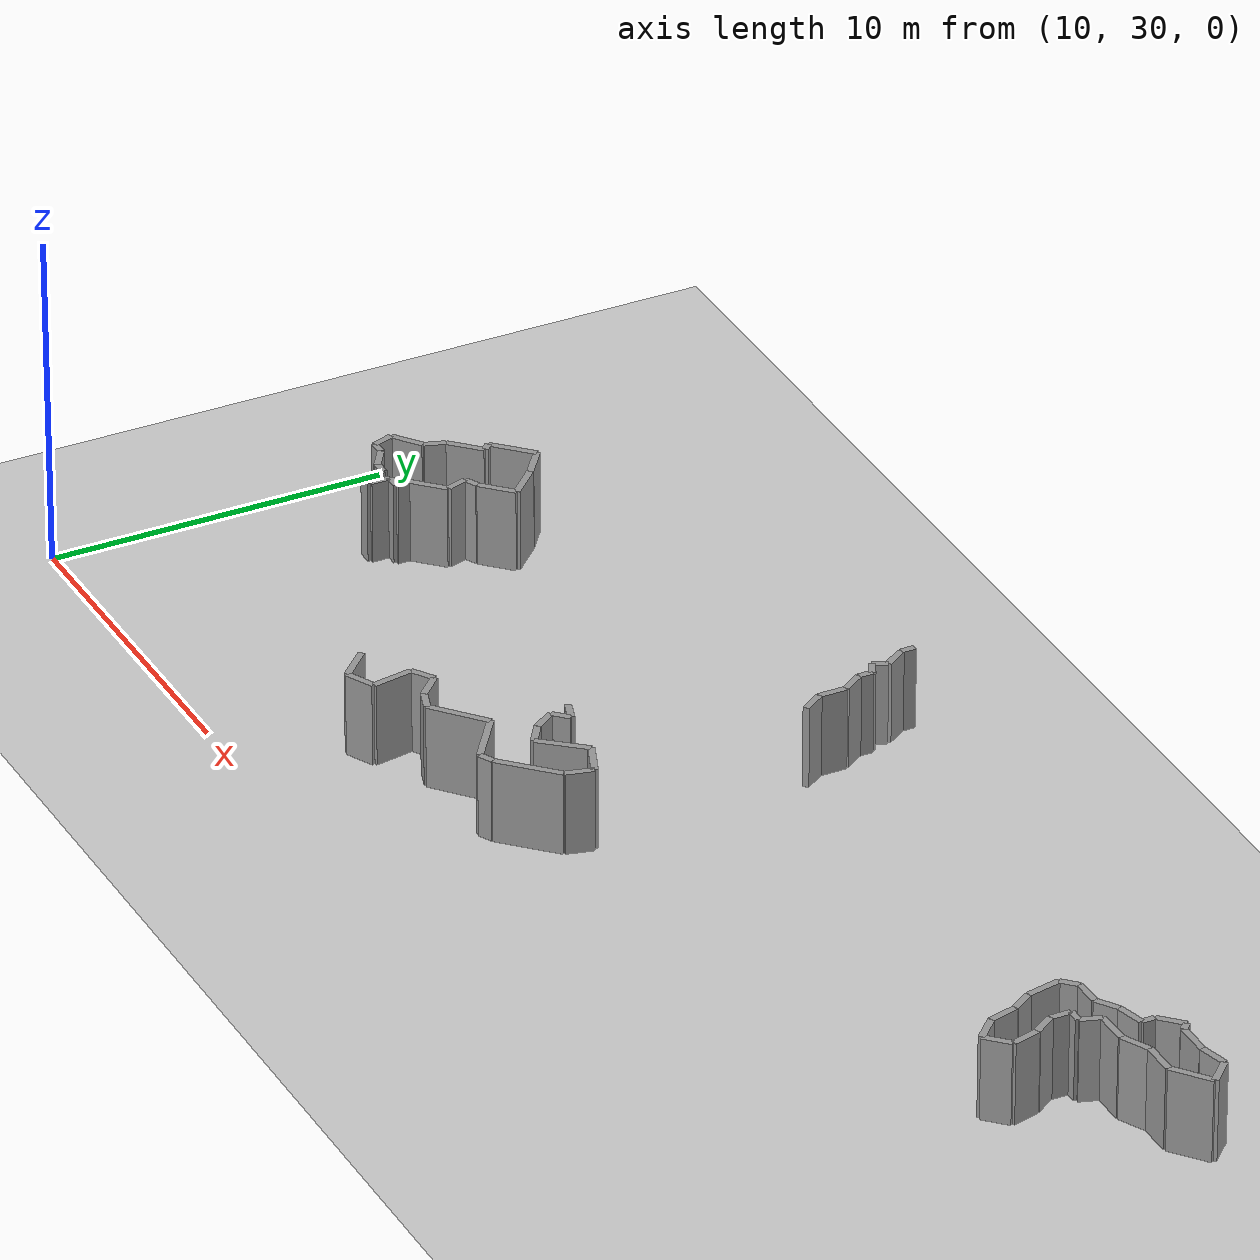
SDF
<sdf version="1.4">
 <world name="1_wall">
  <model name="ground_plane">
   <static>1</static>
   <link name="link">
    <collision name="collision">
     <geometry><plane><normal>0 0 1</normal><size>1000 1000</size></plane></geometry>
     <surface><friction><ode><mu>100</mu><mu2>50</mu2></ode></friction></surface>
    </collision>
    <visual name="visual">
     <cast_shadows>0</cast_shadows>
     <geometry><plane><normal>0 0 1</normal><size>10000 10000</size></plane></geometry>
     <material>
      <script><uri>file://media/materials/scripts/gazebo.material</uri><name>Gazebo/Grey</name></script>
     </material>
    </visual>
    <velocity_decay><linear>0</linear><angular>0</angular></velocity_decay>
   </link>
  </model>
  <model name="Wall_620">
   <static>1</static>
   <link name="Wall_620">
    <collision name="Wall_Collision_620">
     <geometry><box><size>0.4 0.2 2.5</size></box></geometry>
     <pose>0 0 1.25 0 -0 0</pose>
    </collision>
    <visual name="Wall_Visual_620">
     <pose>0 0 1.25 0 -0 0</pose>
     <geometry><box><size>0.4 0.2 2.5</size></box></geometry>
     <material>
      <script><uri>file://media/materials/scripts/gazebo.material</uri><name>Gazebo/Grey</name></script>
     </material>
    </visual>
    <velocity_decay><linear>0</linear><angular>0</angular></velocity_decay>
    <pose>28.2 47.0 0 0 0 -1.57079632679</pose>
   </link>
  </model>
  <model name="Wall_621">
   <static>1</static>
   <link name="Wall_621">
    <collision name="Wall_Collision_621">
     <geometry><box><size>0.721110255093 0.2 2.5</size></box></geometry>
     <pose>0 0 1.25 0 -0 0</pose>
    </collision>
    <visual name="Wall_Visual_621">
     <pose>0 0 1.25 0 -0 0</pose>
     <geometry><box><size>0.721110255093 0.2 2.5</size></box></geometry>
     <material>
      <script><uri>file://media/materials/scripts/gazebo.material</uri><name>Gazebo/Grey</name></script>
     </material>
    </visual>
    <velocity_decay><linear>0</linear><angular>0</angular></velocity_decay>
    <pose>28.4 46.5 0 0 0 -0.982793723247</pose>
   </link>
  </model>
  <model name="Wall_622">
   <static>1</static>
   <link name="Wall_622">
    <collision name="Wall_Collision_622">
     <geometry><box><size>0.4472135955 0.2 2.5</size></box></geometry>
     <pose>0 0 1.25 0 -0 0</pose>
    </collision>
    <visual name="Wall_Visual_622">
     <pose>0 0 1.25 0 -0 0</pose>
     <geometry><box><size>0.4472135955 0.2 2.5</size></box></geometry>
     <material>
      <script><uri>file://media/materials/scripts/gazebo.material</uri><name>Gazebo/Grey</name></script>
     </material>
    </visual>
    <velocity_decay><linear>0</linear><angular>0</angular></velocity_decay>
    <pose>28.5 46.0 0 0 0 -2.0344439358</pose>
   </link>
  </model>
  <model name="Wall_623">
   <static>1</static>
   <link name="Wall_623">
    <collision name="Wall_Collision_623">
     <geometry><box><size>0.4472135955 0.2 2.5</size></box></geometry>
     <pose>0 0 1.25 0 -0 0</pose>
    </collision>
    <visual name="Wall_Visual_623">
     <pose>0 0 1.25 0 -0 0</pose>
     <geometry><box><size>0.4472135955 0.2 2.5</size></box></geometry>
     <material>
      <script><uri>file://media/materials/scripts/gazebo.material</uri><name>Gazebo/Grey</name></script>
     </material>
    </visual>
    <velocity_decay><linear>0</linear><angular>0</angular></velocity_decay>
    <pose>28.6 45.7 0 0 0 -0.463647609001</pose>
   </link>
  </model>
  <model name="Wall_624">
   <static>1</static>
   <link name="Wall_624">
    <collision name="Wall_Collision_624">
     <geometry><box><size>0.4 0.2 2.5</size></box></geometry>
     <pose>0 0 1.25 0 -0 0</pose>
    </collision>
    <visual name="Wall_Visual_624">
     <pose>0 0 1.25 0 -0 0</pose>
     <geometry><box><size>0.4 0.2 2.5</size></box></geometry>
     <material>
      <script><uri>file://media/materials/scripts/gazebo.material</uri><name>Gazebo/Grey</name></script>
     </material>
    </visual>
    <velocity_decay><linear>0</linear><angular>0</angular></velocity_decay>
    <pose>28.8 45.4 0 0 0 -1.57079632679</pose>
   </link>
  </model>
  <model name="Wall_625">
   <static>1</static>
   <link name="Wall_625">
    <collision name="Wall_Collision_625">
     <geometry><box><size>0.721110255093 0.2 2.5</size></box></geometry>
     <pose>0 0 1.25 0 -0 0</pose>
    </collision>
    <visual name="Wall_Visual_625">
     <pose>0 0 1.25 0 -0 0</pose>
     <geometry><box><size>0.721110255093 0.2 2.5</size></box></geometry>
     <material>
      <script><uri>file://media/materials/scripts/gazebo.material</uri><name>Gazebo/Grey</name></script>
     </material>
    </visual>
    <velocity_decay><linear>0</linear><angular>0</angular></velocity_decay>
    <pose>29.0 44.9 0 0 0 -0.982793723247</pose>
   </link>
  </model>
  <model name="Wall_626">
   <static>1</static>
   <link name="Wall_626">
    <collision name="Wall_Collision_626">
     <geometry><box><size>0.8 0.2 2.5</size></box></geometry>
     <pose>0 0 1.25 0 -0 0</pose>
    </collision>
    <visual name="Wall_Visual_626">
     <pose>0 0 1.25 0 -0 0</pose>
     <geometry><box><size>0.8 0.2 2.5</size></box></geometry>
     <material>
      <script><uri>file://media/materials/scripts/gazebo.material</uri><name>Gazebo/Grey</name></script>
     </material>
    </visual>
    <velocity_decay><linear>0</linear><angular>0</angular></velocity_decay>
    <pose>29.2 44.2 0 0 0 -1.57079632679</pose>
   </link>
  </model>
  <model name="Wall_627">
   <static>1</static>
   <link name="Wall_627">
    <collision name="Wall_Collision_627">
     <geometry><box><size>0.721110255093 0.2 2.5</size></box></geometry>
     <pose>0 0 1.25 0 -0 0</pose>
    </collision>
    <visual name="Wall_Visual_627">
     <pose>0 0 1.25 0 -0 0</pose>
     <geometry><box><size>0.721110255093 0.2 2.5</size></box></geometry>
     <material>
      <script><uri>file://media/materials/scripts/gazebo.material</uri><name>Gazebo/Grey</name></script>
     </material>
    </visual>
    <velocity_decay><linear>0</linear><angular>0</angular></velocity_decay>
    <pose>29.4 43.5 0 0 0 -0.982793723247</pose>
   </link>
  </model>
  <model name="Wall_628">
   <static>1</static>
   <link name="Wall_628">
    <collision name="Wall_Collision_628">
     <geometry><box><size>0.848528137424 0.2 2.5</size></box></geometry>
     <pose>0 0 1.25 0 -0 0</pose>
    </collision>
    <visual name="Wall_Visual_628">
     <pose>0 0 1.25 0 -0 0</pose>
     <geometry><box><size>0.848528137424 0.2 2.5</size></box></geometry>
     <material>
      <script><uri>file://media/materials/scripts/gazebo.material</uri><name>Gazebo/Grey</name></script>
     </material>
    </visual>
    <velocity_decay><linear>0</linear><angular>0</angular></velocity_decay>
    <pose>45.3 40.3 0 0 0 -0.785398163397</pose>
   </link>
  </model>
  <model name="Wall_629">
   <static>1</static>
   <link name="Wall_629">
    <collision name="Wall_Collision_629">
     <geometry><box><size>0.848528137424 0.2 2.5</size></box></geometry>
     <pose>0 0 1.25 0 -0 0</pose>
    </collision>
    <visual name="Wall_Visual_629">
     <pose>0 0 1.25 0 -0 0</pose>
     <geometry><box><size>0.848528137424 0.2 2.5</size></box></geometry>
     <material>
      <script><uri>file://media/materials/scripts/gazebo.material</uri><name>Gazebo/Grey</name></script>
     </material>
    </visual>
    <velocity_decay><linear>0</linear><angular>0</angular></velocity_decay>
    <pose>45.9 40.3 0 0 0 0.785398163397</pose>
   </link>
  </model>
  <model name="Wall_630">
   <static>1</static>
   <link name="Wall_630">
    <collision name="Wall_Collision_630">
     <geometry><box><size>0.824621125124 0.2 2.5</size></box></geometry>
     <pose>0 0 1.25 0 -0 0</pose>
    </collision>
    <visual name="Wall_Visual_630">
     <pose>0 0 1.25 0 -0 0</pose>
     <geometry><box><size>0.824621125124 0.2 2.5</size></box></geometry>
     <material>
      <script><uri>file://media/materials/scripts/gazebo.material</uri><name>Gazebo/Grey</name></script>
     </material>
    </visual>
    <velocity_decay><linear>0</linear><angular>0</angular></velocity_decay>
    <pose>46.1 41.0 0 0 0 1.81577498992</pose>
   </link>
  </model>
  <model name="Wall_631">
   <static>1</static>
   <link name="Wall_631">
    <collision name="Wall_Collision_631">
     <geometry><box><size>0.721110255093 0.2 2.5</size></box></geometry>
     <pose>0 0 1.25 0 -0 0</pose>
    </collision>
    <visual name="Wall_Visual_631">
     <pose>0 0 1.25 0 -0 0</pose>
     <geometry><box><size>0.721110255093 0.2 2.5</size></box></geometry>
     <material>
      <script><uri>file://media/materials/scripts/gazebo.material</uri><name>Gazebo/Grey</name></script>
     </material>
    </visual>
    <velocity_decay><linear>0</linear><angular>0</angular></velocity_decay>
    <pose>45.8 41.7 0 0 0 2.15879893034</pose>
   </link>
  </model>
  <model name="Wall_632">
   <static>1</static>
   <link name="Wall_632">
    <collision name="Wall_Collision_632">
     <geometry><box><size>0.6 0.2 2.5</size></box></geometry>
     <pose>0 0 1.25 0 -0 0</pose>
    </collision>
    <visual name="Wall_Visual_632">
     <pose>0 0 1.25 0 -0 0</pose>
     <geometry><box><size>0.6 0.2 2.5</size></box></geometry>
     <material>
      <script><uri>file://media/materials/scripts/gazebo.material</uri><name>Gazebo/Grey</name></script>
     </material>
    </visual>
    <velocity_decay><linear>0</linear><angular>0</angular></velocity_decay>
    <pose>45.6 42.3 0 0 0 1.57079632679</pose>
   </link>
  </model>
  <model name="Wall_633">
   <static>1</static>
   <link name="Wall_633">
    <collision name="Wall_Collision_633">
     <geometry><box><size>0.4 0.2 2.5</size></box></geometry>
     <pose>0 0 1.25 0 -0 0</pose>
    </collision>
    <visual name="Wall_Visual_633">
     <pose>0 0 1.25 0 -0 0</pose>
     <geometry><box><size>0.4 0.2 2.5</size></box></geometry>
     <material>
      <script><uri>file://media/materials/scripts/gazebo.material</uri><name>Gazebo/Grey</name></script>
     </material>
    </visual>
    <velocity_decay><linear>0</linear><angular>0</angular></velocity_decay>
    <pose>45.8 42.6 0 0 0 0.0</pose>
   </link>
  </model>
  <model name="Wall_634">
   <static>1</static>
   <link name="Wall_634">
    <collision name="Wall_Collision_634">
     <geometry><box><size>0.632455532034 0.2 2.5</size></box></geometry>
     <pose>0 0 1.25 0 -0 0</pose>
    </collision>
    <visual name="Wall_Visual_634">
     <pose>0 0 1.25 0 -0 0</pose>
     <geometry><box><size>0.632455532034 0.2 2.5</size></box></geometry>
     <material>
      <script><uri>file://media/materials/scripts/gazebo.material</uri><name>Gazebo/Grey</name></script>
     </material>
    </visual>
    <velocity_decay><linear>0</linear><angular>0</angular></velocity_decay>
    <pose>46.1 42.9 0 0 0 1.2490457724</pose>
   </link>
  </model>
  <model name="Wall_635">
   <static>1</static>
   <link name="Wall_635">
    <collision name="Wall_Collision_635">
     <geometry><box><size>1.0 0.2 2.5</size></box></geometry>
     <pose>0 0 1.25 0 -0 0</pose>
    </collision>
    <visual name="Wall_Visual_635">
     <pose>0 0 1.25 0 -0 0</pose>
     <geometry><box><size>1.0 0.2 2.5</size></box></geometry>
     <material>
      <script><uri>file://media/materials/scripts/gazebo.material</uri><name>Gazebo/Grey</name></script>
     </material>
    </visual>
    <velocity_decay><linear>0</linear><angular>0</angular></velocity_decay>
    <pose>46.7 43.2 0 0 0 0.0</pose>
   </link>
  </model>
  <model name="Wall_636">
   <static>1</static>
   <link name="Wall_636">
    <collision name="Wall_Collision_636">
     <geometry><box><size>0.894427191 0.2 2.5</size></box></geometry>
     <pose>0 0 1.25 0 -0 0</pose>
    </collision>
    <visual name="Wall_Visual_636">
     <pose>0 0 1.25 0 -0 0</pose>
     <geometry><box><size>0.894427191 0.2 2.5</size></box></geometry>
     <material>
      <script><uri>file://media/materials/scripts/gazebo.material</uri><name>Gazebo/Grey</name></script>
     </material>
    </visual>
    <velocity_decay><linear>0</linear><angular>0</angular></velocity_decay>
    <pose>47.6 43.4 0 0 0 0.463647609001</pose>
   </link>
  </model>
  <model name="Wall_637">
   <static>1</static>
   <link name="Wall_637">
    <collision name="Wall_Collision_637">
     <geometry><box><size>1.0 0.2 2.5</size></box></geometry>
     <pose>0 0 1.25 0 -0 0</pose>
    </collision>
    <visual name="Wall_Visual_637">
     <pose>0 0 1.25 0 -0 0</pose>
     <geometry><box><size>1.0 0.2 2.5</size></box></geometry>
     <material>
      <script><uri>file://media/materials/scripts/gazebo.material</uri><name>Gazebo/Grey</name></script>
     </material>
    </visual>
    <velocity_decay><linear>0</linear><angular>0</angular></velocity_decay>
    <pose>48.5 43.6 0 0 0 0.0</pose>
   </link>
  </model>
  <model name="Wall_638">
   <static>1</static>
   <link name="Wall_638">
    <collision name="Wall_Collision_638">
     <geometry><box><size>1.28062484749 0.2 2.5</size></box></geometry>
     <pose>0 0 1.25 0 -0 0</pose>
    </collision>
    <visual name="Wall_Visual_638">
     <pose>0 0 1.25 0 -0 0</pose>
     <geometry><box><size>1.28062484749 0.2 2.5</size></box></geometry>
     <material>
      <script><uri>file://media/materials/scripts/gazebo.material</uri><name>Gazebo/Grey</name></script>
     </material>
    </visual>
    <velocity_decay><linear>0</linear><angular>0</angular></velocity_decay>
    <pose>49.5 44.0 0 0 0 0.674740942224</pose>
   </link>
  </model>
  <model name="Wall_639">
   <static>1</static>
   <link name="Wall_639">
    <collision name="Wall_Collision_639">
     <geometry><box><size>0.848528137424 0.2 2.5</size></box></geometry>
     <pose>0 0 1.25 0 -0 0</pose>
    </collision>
    <visual name="Wall_Visual_639">
     <pose>0 0 1.25 0 -0 0</pose>
     <geometry><box><size>0.848528137424 0.2 2.5</size></box></geometry>
     <material>
      <script><uri>file://media/materials/scripts/gazebo.material</uri><name>Gazebo/Grey</name></script>
     </material>
    </visual>
    <velocity_decay><linear>0</linear><angular>0</angular></velocity_decay>
    <pose>49.7 44.7 0 0 0 2.35619449019</pose>
   </link>
  </model>
  <model name="Wall_640">
   <static>1</static>
   <link name="Wall_640">
    <collision name="Wall_Collision_640">
     <geometry><box><size>0.824621125124 0.2 2.5</size></box></geometry>
     <pose>0 0 1.25 0 -0 0</pose>
    </collision>
    <visual name="Wall_Visual_640">
     <pose>0 0 1.25 0 -0 0</pose>
     <geometry><box><size>0.824621125124 0.2 2.5</size></box></geometry>
     <material>
      <script><uri>file://media/materials/scripts/gazebo.material</uri><name>Gazebo/Grey</name></script>
     </material>
    </visual>
    <velocity_decay><linear>0</linear><angular>0</angular></velocity_decay>
    <pose>49.0 44.9 0 0 0 -2.89661399046</pose>
   </link>
  </model>
  <model name="Wall_641">
   <static>1</static>
   <link name="Wall_641">
    <collision name="Wall_Collision_641">
     <geometry><box><size>1.0 0.2 2.5</size></box></geometry>
     <pose>0 0 1.25 0 -0 0</pose>
    </collision>
    <visual name="Wall_Visual_641">
     <pose>0 0 1.25 0 -0 0</pose>
     <geometry><box><size>1.0 0.2 2.5</size></box></geometry>
     <material>
      <script><uri>file://media/materials/scripts/gazebo.material</uri><name>Gazebo/Grey</name></script>
     </material>
    </visual>
    <velocity_decay><linear>0</linear><angular>0</angular></velocity_decay>
    <pose>48.1 44.8 0 0 0 3.14159265359</pose>
   </link>
  </model>
  <model name="Wall_642">
   <static>1</static>
   <link name="Wall_642">
    <collision name="Wall_Collision_642">
     <geometry><box><size>0.282842712475 0.2 2.5</size></box></geometry>
     <pose>0 0 1.25 0 -0 0</pose>
    </collision>
    <visual name="Wall_Visual_642">
     <pose>0 0 1.25 0 -0 0</pose>
     <geometry><box><size>0.282842712475 0.2 2.5</size></box></geometry>
     <material>
      <script><uri>file://media/materials/scripts/gazebo.material</uri><name>Gazebo/Grey</name></script>
     </material>
    </visual>
    <velocity_decay><linear>0</linear><angular>0</angular></velocity_decay>
    <pose>47.5 44.9 0 0 0 2.35619449019</pose>
   </link>
  </model>
  <model name="Wall_643">
   <static>1</static>
   <link name="Wall_643">
    <collision name="Wall_Collision_643">
     <geometry><box><size>0.848528137424 0.2 2.5</size></box></geometry>
     <pose>0 0 1.25 0 -0 0</pose>
    </collision>
    <visual name="Wall_Visual_643">
     <pose>0 0 1.25 0 -0 0</pose>
     <geometry><box><size>0.848528137424 0.2 2.5</size></box></geometry>
     <material>
      <script><uri>file://media/materials/scripts/gazebo.material</uri><name>Gazebo/Grey</name></script>
     </material>
    </visual>
    <velocity_decay><linear>0</linear><angular>0</angular></velocity_decay>
    <pose>47.1 44.7 0 0 0 -2.35619449019</pose>
   </link>
  </model>
  <model name="Wall_644">
   <static>1</static>
   <link name="Wall_644">
    <collision name="Wall_Collision_644">
     <geometry><box><size>0.4 0.2 2.5</size></box></geometry>
     <pose>0 0 1.25 0 -0 0</pose>
    </collision>
    <visual name="Wall_Visual_644">
     <pose>0 0 1.25 0 -0 0</pose>
     <geometry><box><size>0.4 0.2 2.5</size></box></geometry>
     <material>
      <script><uri>file://media/materials/scripts/gazebo.material</uri><name>Gazebo/Grey</name></script>
     </material>
    </visual>
    <velocity_decay><linear>0</linear><angular>0</angular></velocity_decay>
    <pose>46.8 44.2 0 0 0 -1.57079632679</pose>
   </link>
  </model>
  <model name="Wall_645">
   <static>1</static>
   <link name="Wall_645">
    <collision name="Wall_Collision_645">
     <geometry><box><size>0.824621125124 0.2 2.5</size></box></geometry>
     <pose>0 0 1.25 0 -0 0</pose>
    </collision>
    <visual name="Wall_Visual_645">
     <pose>0 0 1.25 0 -0 0</pose>
     <geometry><box><size>0.824621125124 0.2 2.5</size></box></geometry>
     <material>
      <script><uri>file://media/materials/scripts/gazebo.material</uri><name>Gazebo/Grey</name></script>
     </material>
    </visual>
    <velocity_decay><linear>0</linear><angular>0</angular></velocity_decay>
    <pose>46.4 43.9 0 0 0 -2.89661399046</pose>
   </link>
  </model>
  <model name="Wall_646">
   <static>1</static>
   <link name="Wall_646">
    <collision name="Wall_Collision_646">
     <geometry><box><size>0.721110255093 0.2 2.5</size></box></geometry>
     <pose>0 0 1.25 0 -0 0</pose>
    </collision>
    <visual name="Wall_Visual_646">
     <pose>0 0 1.25 0 -0 0</pose>
     <geometry><box><size>0.721110255093 0.2 2.5</size></box></geometry>
     <material>
      <script><uri>file://media/materials/scripts/gazebo.material</uri><name>Gazebo/Grey</name></script>
     </material>
    </visual>
    <velocity_decay><linear>0</linear><angular>0</angular></velocity_decay>
    <pose>45.7 43.6 0 0 0 -2.55359005004</pose>
   </link>
  </model>
  <model name="Wall_647">
   <static>1</static>
   <link name="Wall_647">
    <collision name="Wall_Collision_647">
     <geometry><box><size>0.8 0.2 2.5</size></box></geometry>
     <pose>0 0 1.25 0 -0 0</pose>
    </collision>
    <visual name="Wall_Visual_647">
     <pose>0 0 1.25 0 -0 0</pose>
     <geometry><box><size>0.8 0.2 2.5</size></box></geometry>
     <material>
      <script><uri>file://media/materials/scripts/gazebo.material</uri><name>Gazebo/Grey</name></script>
     </material>
    </visual>
    <velocity_decay><linear>0</linear><angular>0</angular></velocity_decay>
    <pose>45.0 43.4 0 0 0 3.14159265359</pose>
   </link>
  </model>
  <model name="Wall_648">
   <static>1</static>
   <link name="Wall_648">
    <collision name="Wall_Collision_648">
     <geometry><box><size>0.565685424949 0.2 2.5</size></box></geometry>
     <pose>0 0 1.25 0 -0 0</pose>
    </collision>
    <visual name="Wall_Visual_648">
     <pose>0 0 1.25 0 -0 0</pose>
     <geometry><box><size>0.565685424949 0.2 2.5</size></box></geometry>
     <material>
      <script><uri>file://media/materials/scripts/gazebo.material</uri><name>Gazebo/Grey</name></script>
     </material>
    </visual>
    <velocity_decay><linear>0</linear><angular>0</angular></velocity_decay>
    <pose>44.4 43.2 0 0 0 -2.35619449019</pose>
   </link>
  </model>
  <model name="Wall_649">
   <static>1</static>
   <link name="Wall_649">
    <collision name="Wall_Collision_649">
     <geometry><box><size>1.01980390272 0.2 2.5</size></box></geometry>
     <pose>0 0 1.25 0 -0 0</pose>
    </collision>
    <visual name="Wall_Visual_649">
     <pose>0 0 1.25 0 -0 0</pose>
     <geometry><box><size>1.01980390272 0.2 2.5</size></box></geometry>
     <material>
      <script><uri>file://media/materials/scripts/gazebo.material</uri><name>Gazebo/Grey</name></script>
     </material>
    </visual>
    <velocity_decay><linear>0</linear><angular>0</angular></velocity_decay>
    <pose>44.3 42.5 0 0 0 -1.37340076695</pose>
   </link>
  </model>
  <model name="Wall_650">
   <static>1</static>
   <link name="Wall_650">
    <collision name="Wall_Collision_650">
     <geometry><box><size>0.721110255093 0.2 2.5</size></box></geometry>
     <pose>0 0 1.25 0 -0 0</pose>
    </collision>
    <visual name="Wall_Visual_650">
     <pose>0 0 1.25 0 -0 0</pose>
     <geometry><box><size>0.721110255093 0.2 2.5</size></box></geometry>
     <material>
      <script><uri>file://media/materials/scripts/gazebo.material</uri><name>Gazebo/Grey</name></script>
     </material>
    </visual>
    <velocity_decay><linear>0</linear><angular>0</angular></velocity_decay>
    <pose>44.6 41.7 0 0 0 -0.982793723247</pose>
   </link>
  </model>
  <model name="Wall_651">
   <static>1</static>
   <link name="Wall_651">
    <collision name="Wall_Collision_651">
     <geometry><box><size>0.824621125124 0.2 2.5</size></box></geometry>
     <pose>0 0 1.25 0 -0 0</pose>
    </collision>
    <visual name="Wall_Visual_651">
     <pose>0 0 1.25 0 -0 0</pose>
     <geometry><box><size>0.824621125124 0.2 2.5</size></box></geometry>
     <material>
      <script><uri>file://media/materials/scripts/gazebo.material</uri><name>Gazebo/Grey</name></script>
     </material>
    </visual>
    <velocity_decay><linear>0</linear><angular>0</angular></velocity_decay>
    <pose>44.9 41.0 0 0 0 -1.32581766367</pose>
   </link>
  </model>
  <model name="Wall_652">
   <static>1</static>
   <link name="Wall_652">
    <collision name="Wall_Collision_652">
     <geometry><box><size>0.6 0.2 2.5</size></box></geometry>
     <pose>0 0 1.25 0 -0 0</pose>
    </collision>
    <visual name="Wall_Visual_652">
     <pose>0 0 1.25 0 -0 0</pose>
     <geometry><box><size>0.6 0.2 2.5</size></box></geometry>
     <material>
      <script><uri>file://media/materials/scripts/gazebo.material</uri><name>Gazebo/Grey</name></script>
     </material>
    </visual>
    <velocity_decay><linear>0</linear><angular>0</angular></velocity_decay>
    <pose>13.6 38.1 0 0 0 -1.57079632679</pose>
   </link>
  </model>
  <model name="Wall_653">
   <static>1</static>
   <link name="Wall_653">
    <collision name="Wall_Collision_653">
     <geometry><box><size>0.4 0.2 2.5</size></box></geometry>
     <pose>0 0 1.25 0 -0 0</pose>
    </collision>
    <visual name="Wall_Visual_653">
     <pose>0 0 1.25 0 -0 0</pose>
     <geometry><box><size>0.4 0.2 2.5</size></box></geometry>
     <material>
      <script><uri>file://media/materials/scripts/gazebo.material</uri><name>Gazebo/Grey</name></script>
     </material>
    </visual>
    <velocity_decay><linear>0</linear><angular>0</angular></velocity_decay>
    <pose>13.8 37.8 0 0 0 0.0</pose>
   </link>
  </model>
  <model name="Wall_654">
   <static>1</static>
   <link name="Wall_654">
    <collision name="Wall_Collision_654">
     <geometry><box><size>0.6 0.2 2.5</size></box></geometry>
     <pose>0 0 1.25 0 -0 0</pose>
    </collision>
    <visual name="Wall_Visual_654">
     <pose>0 0 1.25 0 -0 0</pose>
     <geometry><box><size>0.6 0.2 2.5</size></box></geometry>
     <material>
      <script><uri>file://media/materials/scripts/gazebo.material</uri><name>Gazebo/Grey</name></script>
     </material>
    </visual>
    <velocity_decay><linear>0</linear><angular>0</angular></velocity_decay>
    <pose>14.0 38.1 0 0 0 1.57079632679</pose>
   </link>
  </model>
  <model name="Wall_655">
   <static>1</static>
   <link name="Wall_655">
    <collision name="Wall_Collision_655">
     <geometry><box><size>0.4 0.2 2.5</size></box></geometry>
     <pose>0 0 1.25 0 -0 0</pose>
    </collision>
    <visual name="Wall_Visual_655">
     <pose>0 0 1.25 0 -0 0</pose>
     <geometry><box><size>0.4 0.2 2.5</size></box></geometry>
     <material>
      <script><uri>file://media/materials/scripts/gazebo.material</uri><name>Gazebo/Grey</name></script>
     </material>
    </visual>
    <velocity_decay><linear>0</linear><angular>0</angular></velocity_decay>
    <pose>14.2 38.4 0 0 0 0.0</pose>
   </link>
  </model>
  <model name="Wall_656">
   <static>1</static>
   <link name="Wall_656">
    <collision name="Wall_Collision_656">
     <geometry><box><size>0.4 0.2 2.5</size></box></geometry>
     <pose>0 0 1.25 0 -0 0</pose>
    </collision>
    <visual name="Wall_Visual_656">
     <pose>0 0 1.25 0 -0 0</pose>
     <geometry><box><size>0.4 0.2 2.5</size></box></geometry>
     <material>
      <script><uri>file://media/materials/scripts/gazebo.material</uri><name>Gazebo/Grey</name></script>
     </material>
    </visual>
    <velocity_decay><linear>0</linear><angular>0</angular></velocity_decay>
    <pose>14.4 38.6 0 0 0 1.57079632679</pose>
   </link>
  </model>
  <model name="Wall_657">
   <static>1</static>
   <link name="Wall_657">
    <collision name="Wall_Collision_657">
     <geometry><box><size>1.1313708499 0.2 2.5</size></box></geometry>
     <pose>0 0 1.25 0 -0 0</pose>
    </collision>
    <visual name="Wall_Visual_657">
     <pose>0 0 1.25 0 -0 0</pose>
     <geometry><box><size>1.1313708499 0.2 2.5</size></box></geometry>
     <material>
      <script><uri>file://media/materials/scripts/gazebo.material</uri><name>Gazebo/Grey</name></script>
     </material>
    </visual>
    <velocity_decay><linear>0</linear><angular>0</angular></velocity_decay>
    <pose>14.8 39.2 0 0 0 0.785398163397</pose>
   </link>
  </model>
  <model name="Wall_658">
   <static>1</static>
   <link name="Wall_658">
    <collision name="Wall_Collision_658">
     <geometry><box><size>0.632455532034 0.2 2.5</size></box></geometry>
     <pose>0 0 1.25 0 -0 0</pose>
    </collision>
    <visual name="Wall_Visual_658">
     <pose>0 0 1.25 0 -0 0</pose>
     <geometry><box><size>0.632455532034 0.2 2.5</size></box></geometry>
     <material>
      <script><uri>file://media/materials/scripts/gazebo.material</uri><name>Gazebo/Grey</name></script>
     </material>
    </visual>
    <velocity_decay><linear>0</linear><angular>0</angular></velocity_decay>
    <pose>15.1 39.9 0 0 0 1.89254688119</pose>
   </link>
  </model>
  <model name="Wall_659">
   <static>1</static>
   <link name="Wall_659">
    <collision name="Wall_Collision_659">
     <geometry><box><size>0.4472135955 0.2 2.5</size></box></geometry>
     <pose>0 0 1.25 0 -0 0</pose>
    </collision>
    <visual name="Wall_Visual_659">
     <pose>0 0 1.25 0 -0 0</pose>
     <geometry><box><size>0.4472135955 0.2 2.5</size></box></geometry>
     <material>
      <script><uri>file://media/materials/scripts/gazebo.material</uri><name>Gazebo/Grey</name></script>
     </material>
    </visual>
    <velocity_decay><linear>0</linear><angular>0</angular></velocity_decay>
    <pose>15.2 40.3 0 0 0 0.463647609001</pose>
   </link>
  </model>
  <model name="Wall_660">
   <static>1</static>
   <link name="Wall_660">
    <collision name="Wall_Collision_660">
     <geometry><box><size>1.1313708499 0.2 2.5</size></box></geometry>
     <pose>0 0 1.25 0 -0 0</pose>
    </collision>
    <visual name="Wall_Visual_660">
     <pose>0 0 1.25 0 -0 0</pose>
     <geometry><box><size>1.1313708499 0.2 2.5</size></box></geometry>
     <material>
      <script><uri>file://media/materials/scripts/gazebo.material</uri><name>Gazebo/Grey</name></script>
     </material>
    </visual>
    <velocity_decay><linear>0</linear><angular>0</angular></velocity_decay>
    <pose>15.8 40.8 0 0 0 0.785398163397</pose>
   </link>
  </model>
  <model name="Wall_661">
   <static>1</static>
   <link name="Wall_661">
    <collision name="Wall_Collision_661">
     <geometry><box><size>1.1313708499 0.2 2.5</size></box></geometry>
     <pose>0 0 1.25 0 -0 0</pose>
    </collision>
    <visual name="Wall_Visual_661">
     <pose>0 0 1.25 0 -0 0</pose>
     <geometry><box><size>1.1313708499 0.2 2.5</size></box></geometry>
     <material>
      <script><uri>file://media/materials/scripts/gazebo.material</uri><name>Gazebo/Grey</name></script>
     </material>
    </visual>
    <velocity_decay><linear>0</linear><angular>0</angular></velocity_decay>
    <pose>15.8 41.6 0 0 0 2.35619449019</pose>
   </link>
  </model>
  <model name="Wall_662">
   <static>1</static>
   <link name="Wall_662">
    <collision name="Wall_Collision_662">
     <geometry><box><size>1.0 0.2 2.5</size></box></geometry>
     <pose>0 0 1.25 0 -0 0</pose>
    </collision>
    <visual name="Wall_Visual_662">
     <pose>0 0 1.25 0 -0 0</pose>
     <geometry><box><size>1.0 0.2 2.5</size></box></geometry>
     <material>
      <script><uri>file://media/materials/scripts/gazebo.material</uri><name>Gazebo/Grey</name></script>
     </material>
    </visual>
    <velocity_decay><linear>0</linear><angular>0</angular></velocity_decay>
    <pose>15.0 42.3 0 0 0 2.4980915448</pose>
   </link>
  </model>
  <model name="Wall_663">
   <static>1</static>
   <link name="Wall_663">
    <collision name="Wall_Collision_663">
     <geometry><box><size>1.41421356237 0.2 2.5</size></box></geometry>
     <pose>0 0 1.25 0 -0 0</pose>
    </collision>
    <visual name="Wall_Visual_663">
     <pose>0 0 1.25 0 -0 0</pose>
     <geometry><box><size>1.41421356237 0.2 2.5</size></box></geometry>
     <material>
      <script><uri>file://media/materials/scripts/gazebo.material</uri><name>Gazebo/Grey</name></script>
     </material>
    </visual>
    <velocity_decay><linear>0</linear><angular>0</angular></velocity_decay>
    <pose>14.1 42.1 0 0 0 -2.35619449019</pose>
   </link>
  </model>
  <model name="Wall_664">
   <static>1</static>
   <link name="Wall_664">
    <collision name="Wall_Collision_664">
     <geometry><box><size>0.282842712475 0.2 2.5</size></box></geometry>
     <pose>0 0 1.25 0 -0 0</pose>
    </collision>
    <visual name="Wall_Visual_664">
     <pose>0 0 1.25 0 -0 0</pose>
     <geometry><box><size>0.282842712475 0.2 2.5</size></box></geometry>
     <material>
      <script><uri>file://media/materials/scripts/gazebo.material</uri><name>Gazebo/Grey</name></script>
     </material>
    </visual>
    <velocity_decay><linear>0</linear><angular>0</angular></velocity_decay>
    <pose>13.7 41.5 0 0 0 -0.785398163397</pose>
   </link>
  </model>
  <model name="Wall_665">
   <static>1</static>
   <link name="Wall_665">
    <collision name="Wall_Collision_665">
     <geometry><box><size>1.1313708499 0.2 2.5</size></box></geometry>
     <pose>0 0 1.25 0 -0 0</pose>
    </collision>
    <visual name="Wall_Visual_665">
     <pose>0 0 1.25 0 -0 0</pose>
     <geometry><box><size>1.1313708499 0.2 2.5</size></box></geometry>
     <material>
      <script><uri>file://media/materials/scripts/gazebo.material</uri><name>Gazebo/Grey</name></script>
     </material>
    </visual>
    <velocity_decay><linear>0</linear><angular>0</angular></velocity_decay>
    <pose>13.4 41.0 0 0 0 -2.35619449019</pose>
   </link>
  </model>
  <model name="Wall_666">
   <static>1</static>
   <link name="Wall_666">
    <collision name="Wall_Collision_666">
     <geometry><box><size>0.632455532034 0.2 2.5</size></box></geometry>
     <pose>0 0 1.25 0 -0 0</pose>
    </collision>
    <visual name="Wall_Visual_666">
     <pose>0 0 1.25 0 -0 0</pose>
     <geometry><box><size>0.632455532034 0.2 2.5</size></box></geometry>
     <material>
      <script><uri>file://media/materials/scripts/gazebo.material</uri><name>Gazebo/Grey</name></script>
     </material>
    </visual>
    <velocity_decay><linear>0</linear><angular>0</angular></velocity_decay>
    <pose>12.9 40.3 0 0 0 -1.89254688119</pose>
   </link>
  </model>
  <model name="Wall_667">
   <static>1</static>
   <link name="Wall_667">
    <collision name="Wall_Collision_667">
     <geometry><box><size>1.0 0.2 2.5</size></box></geometry>
     <pose>0 0 1.25 0 -0 0</pose>
    </collision>
    <visual name="Wall_Visual_667">
     <pose>0 0 1.25 0 -0 0</pose>
     <geometry><box><size>1.0 0.2 2.5</size></box></geometry>
     <material>
      <script><uri>file://media/materials/scripts/gazebo.material</uri><name>Gazebo/Grey</name></script>
     </material>
    </visual>
    <velocity_decay><linear>0</linear><angular>0</angular></velocity_decay>
    <pose>12.4 39.7 0 0 0 -2.4980915448</pose>
   </link>
  </model>
  <model name="Wall_668">
   <static>1</static>
   <link name="Wall_668">
    <collision name="Wall_Collision_668">
     <geometry><box><size>0.632455532034 0.2 2.5</size></box></geometry>
     <pose>0 0 1.25 0 -0 0</pose>
    </collision>
    <visual name="Wall_Visual_668">
     <pose>0 0 1.25 0 -0 0</pose>
     <geometry><box><size>0.632455532034 0.2 2.5</size></box></geometry>
     <material>
      <script><uri>file://media/materials/scripts/gazebo.material</uri><name>Gazebo/Grey</name></script>
     </material>
    </visual>
    <velocity_decay><linear>0</linear><angular>0</angular></velocity_decay>
    <pose>12.1 39.1 0 0 0 -1.2490457724</pose>
   </link>
  </model>
  <model name="Wall_669">
   <static>1</static>
   <link name="Wall_669">
    <collision name="Wall_Collision_669">
     <geometry><box><size>0.4 0.2 2.5</size></box></geometry>
     <pose>0 0 1.25 0 -0 0</pose>
    </collision>
    <visual name="Wall_Visual_669">
     <pose>0 0 1.25 0 -0 0</pose>
     <geometry><box><size>0.4 0.2 2.5</size></box></geometry>
     <material>
      <script><uri>file://media/materials/scripts/gazebo.material</uri><name>Gazebo/Grey</name></script>
     </material>
    </visual>
    <velocity_decay><linear>0</linear><angular>0</angular></velocity_decay>
    <pose>12.4 38.8 0 0 0 0.0</pose>
   </link>
  </model>
  <model name="Wall_670">
   <static>1</static>
   <link name="Wall_670">
    <collision name="Wall_Collision_670">
     <geometry><box><size>0.721110255093 0.2 2.5</size></box></geometry>
     <pose>0 0 1.25 0 -0 0</pose>
    </collision>
    <visual name="Wall_Visual_670">
     <pose>0 0 1.25 0 -0 0</pose>
     <geometry><box><size>0.721110255093 0.2 2.5</size></box></geometry>
     <material>
      <script><uri>file://media/materials/scripts/gazebo.material</uri><name>Gazebo/Grey</name></script>
     </material>
    </visual>
    <velocity_decay><linear>0</linear><angular>0</angular></velocity_decay>
    <pose>12.9 38.6 0 0 0 -0.588002603548</pose>
   </link>
  </model>
  <model name="Wall_671">
   <static>1</static>
   <link name="Wall_671">
    <collision name="Wall_Collision_671">
     <geometry><box><size>0.4 0.2 2.5</size></box></geometry>
     <pose>0 0 1.25 0 -0 0</pose>
    </collision>
    <visual name="Wall_Visual_671">
     <pose>0 0 1.25 0 -0 0</pose>
     <geometry><box><size>0.4 0.2 2.5</size></box></geometry>
     <material>
      <script><uri>file://media/materials/scripts/gazebo.material</uri><name>Gazebo/Grey</name></script>
     </material>
    </visual>
    <velocity_decay><linear>0</linear><angular>0</angular></velocity_decay>
    <pose>13.4 38.4 0 0 0 0.0</pose>
   </link>
  </model>
  <model name="Wall_672">
   <static>1</static>
   <link name="Wall_672">
    <collision name="Wall_Collision_672">
     <geometry><box><size>1.1313708499 0.2 2.5</size></box></geometry>
     <pose>0 0 1.25 0 -0 0</pose>
    </collision>
    <visual name="Wall_Visual_672">
     <pose>0 0 1.25 0 -0 0</pose>
     <geometry><box><size>1.1313708499 0.2 2.5</size></box></geometry>
     <material>
      <script><uri>file://media/materials/scripts/gazebo.material</uri><name>Gazebo/Grey</name></script>
     </material>
    </visual>
    <velocity_decay><linear>0</linear><angular>0</angular></velocity_decay>
    <pose>22.2 33.4 0 0 0 -0.785398163397</pose>
   </link>
  </model>
  <model name="Wall_673">
   <static>1</static>
   <link name="Wall_673">
    <collision name="Wall_Collision_673">
     <geometry><box><size>0.894427191 0.2 2.5</size></box></geometry>
     <pose>0 0 1.25 0 -0 0</pose>
    </collision>
    <visual name="Wall_Visual_673">
     <pose>0 0 1.25 0 -0 0</pose>
     <geometry><box><size>0.894427191 0.2 2.5</size></box></geometry>
     <material>
      <script><uri>file://media/materials/scripts/gazebo.material</uri><name>Gazebo/Grey</name></script>
     </material>
    </visual>
    <velocity_decay><linear>0</linear><angular>0</angular></velocity_decay>
    <pose>23.0 33.2 0 0 0 0.463647609001</pose>
   </link>
  </model>
  <model name="Wall_674">
   <static>1</static>
   <link name="Wall_674">
    <collision name="Wall_Collision_674">
     <geometry><box><size>1.21655250606 0.2 2.5</size></box></geometry>
     <pose>0 0 1.25 0 -0 0</pose>
    </collision>
    <visual name="Wall_Visual_674">
     <pose>0 0 1.25 0 -0 0</pose>
     <geometry><box><size>1.21655250606 0.2 2.5</size></box></geometry>
     <material>
      <script><uri>file://media/materials/scripts/gazebo.material</uri><name>Gazebo/Grey</name></script>
     </material>
    </visual>
    <velocity_decay><linear>0</linear><angular>0</angular></velocity_decay>
    <pose>23.3 34.0 0 0 0 1.73594500421</pose>
   </link>
  </model>
  <model name="Wall_675">
   <static>1</static>
   <link name="Wall_675">
    <collision name="Wall_Collision_675">
     <geometry><box><size>0.721110255093 0.2 2.5</size></box></geometry>
     <pose>0 0 1.25 0 -0 0</pose>
    </collision>
    <visual name="Wall_Visual_675">
     <pose>0 0 1.25 0 -0 0</pose>
     <geometry><box><size>0.721110255093 0.2 2.5</size></box></geometry>
     <material>
      <script><uri>file://media/materials/scripts/gazebo.material</uri><name>Gazebo/Grey</name></script>
     </material>
    </visual>
    <velocity_decay><linear>0</linear><angular>0</angular></velocity_decay>
    <pose>23.5 34.8 0 0 0 0.588002603548</pose>
   </link>
  </model>
  <model name="Wall_676">
   <static>1</static>
   <link name="Wall_676">
    <collision name="Wall_Collision_676">
     <geometry><box><size>0.848528137424 0.2 2.5</size></box></geometry>
     <pose>0 0 1.25 0 -0 0</pose>
    </collision>
    <visual name="Wall_Visual_676">
     <pose>0 0 1.25 0 -0 0</pose>
     <geometry><box><size>0.848528137424 0.2 2.5</size></box></geometry>
     <material>
      <script><uri>file://media/materials/scripts/gazebo.material</uri><name>Gazebo/Grey</name></script>
     </material>
    </visual>
    <velocity_decay><linear>0</linear><angular>0</angular></velocity_decay>
    <pose>24.1 34.7 0 0 0 -0.785398163397</pose>
   </link>
  </model>
  <model name="Wall_677">
   <static>1</static>
   <link name="Wall_677">
    <collision name="Wall_Collision_677">
     <geometry><box><size>0.632455532034 0.2 2.5</size></box></geometry>
     <pose>0 0 1.25 0 -0 0</pose>
    </collision>
    <visual name="Wall_Visual_677">
     <pose>0 0 1.25 0 -0 0</pose>
     <geometry><box><size>0.632455532034 0.2 2.5</size></box></geometry>
     <material>
      <script><uri>file://media/materials/scripts/gazebo.material</uri><name>Gazebo/Grey</name></script>
     </material>
    </visual>
    <velocity_decay><linear>0</linear><angular>0</angular></velocity_decay>
    <pose>24.7 34.3 0 0 0 -0.321750554397</pose>
   </link>
  </model>
  <model name="Wall_678">
   <static>1</static>
   <link name="Wall_678">
    <collision name="Wall_Collision_678">
     <geometry><box><size>1.84390889146 0.2 2.5</size></box></geometry>
     <pose>0 0 1.25 0 -0 0</pose>
    </collision>
    <visual name="Wall_Visual_678">
     <pose>0 0 1.25 0 -0 0</pose>
     <geometry><box><size>1.84390889146 0.2 2.5</size></box></geometry>
     <material>
      <script><uri>file://media/materials/scripts/gazebo.material</uri><name>Gazebo/Grey</name></script>
     </material>
    </visual>
    <velocity_decay><linear>0</linear><angular>0</angular></velocity_decay>
    <pose>25.7 34.8 0 0 0 0.708626272128</pose>
   </link>
  </model>
  <model name="Wall_679">
   <static>1</static>
   <link name="Wall_679">
    <collision name="Wall_Collision_679">
     <geometry><box><size>1.72046505341 0.2 2.5</size></box></geometry>
     <pose>0 0 1.25 0 -0 0</pose>
    </collision>
    <visual name="Wall_Visual_679">
     <pose>0 0 1.25 0 -0 0</pose>
     <geometry><box><size>1.72046505341 0.2 2.5</size></box></geometry>
     <material>
      <script><uri>file://media/materials/scripts/gazebo.material</uri><name>Gazebo/Grey</name></script>
     </material>
    </visual>
    <velocity_decay><linear>0</linear><angular>0</angular></velocity_decay>
    <pose>27.1 34.9 0 0 0 -0.620249485983</pose>
   </link>
  </model>
  <model name="Wall_680">
   <static>1</static>
   <link name="Wall_680">
    <collision name="Wall_Collision_680">
     <geometry><box><size>0.4472135955 0.2 2.5</size></box></geometry>
     <pose>0 0 1.25 0 -0 0</pose>
    </collision>
    <visual name="Wall_Visual_680">
     <pose>0 0 1.25 0 -0 0</pose>
     <geometry><box><size>0.4472135955 0.2 2.5</size></box></geometry>
     <material>
      <script><uri>file://media/materials/scripts/gazebo.material</uri><name>Gazebo/Grey</name></script>
     </material>
    </visual>
    <velocity_decay><linear>0</linear><angular>0</angular></velocity_decay>
    <pose>28.0 34.5 0 0 0 0.463647609001</pose>
   </link>
  </model>
  <model name="Wall_681">
   <static>1</static>
   <link name="Wall_681">
    <collision name="Wall_Collision_681">
     <geometry><box><size>1.97989898732 0.2 2.5</size></box></geometry>
     <pose>0 0 1.25 0 -0 0</pose>
    </collision>
    <visual name="Wall_Visual_681">
     <pose>0 0 1.25 0 -0 0</pose>
     <geometry><box><size>1.97989898732 0.2 2.5</size></box></geometry>
     <material>
      <script><uri>file://media/materials/scripts/gazebo.material</uri><name>Gazebo/Grey</name></script>
     </material>
    </visual>
    <velocity_decay><linear>0</linear><angular>0</angular></velocity_decay>
    <pose>28.9 35.3 0 0 0 0.785398163397</pose>
   </link>
  </model>
  <model name="Wall_682">
   <static>1</static>
   <link name="Wall_682">
    <collision name="Wall_Collision_682">
     <geometry><box><size>0.824621125124 0.2 2.5</size></box></geometry>
     <pose>0 0 1.25 0 -0 0</pose>
    </collision>
    <visual name="Wall_Visual_682">
     <pose>0 0 1.25 0 -0 0</pose>
     <geometry><box><size>0.824621125124 0.2 2.5</size></box></geometry>
     <material>
      <script><uri>file://media/materials/scripts/gazebo.material</uri><name>Gazebo/Grey</name></script>
     </material>
    </visual>
    <velocity_decay><linear>0</linear><angular>0</angular></velocity_decay>
    <pose>29.7 36.4 0 0 0 1.32581766367</pose>
   </link>
  </model>
  <model name="Wall_683">
   <static>1</static>
   <link name="Wall_683">
    <collision name="Wall_Collision_683">
     <geometry><box><size>1.07703296143 0.2 2.5</size></box></geometry>
     <pose>0 0 1.25 0 -0 0</pose>
    </collision>
    <visual name="Wall_Visual_683">
     <pose>0 0 1.25 0 -0 0</pose>
     <geometry><box><size>1.07703296143 0.2 2.5</size></box></geometry>
     <material>
      <script><uri>file://media/materials/scripts/gazebo.material</uri><name>Gazebo/Grey</name></script>
     </material>
    </visual>
    <velocity_decay><linear>0</linear><angular>0</angular></velocity_decay>
    <pose>29.3 37.0 0 0 0 2.76108627648</pose>
   </link>
  </model>
  <model name="Wall_684">
   <static>1</static>
   <link name="Wall_684">
    <collision name="Wall_Collision_684">
     <geometry><box><size>1.56204993518 0.2 2.5</size></box></geometry>
     <pose>0 0 1.25 0 -0 0</pose>
    </collision>
    <visual name="Wall_Visual_684">
     <pose>0 0 1.25 0 -0 0</pose>
     <geometry><box><size>1.56204993518 0.2 2.5</size></box></geometry>
     <material>
      <script><uri>file://media/materials/scripts/gazebo.material</uri><name>Gazebo/Grey</name></script>
     </material>
    </visual>
    <velocity_decay><linear>0</linear><angular>0</angular></velocity_decay>
    <pose>28.3 36.6 0 0 0 -2.26553460299</pose>
   </link>
  </model>
  <model name="Wall_685">
   <static>1</static>
   <link name="Wall_685">
    <collision name="Wall_Collision_685">
     <geometry><box><size>0.721110255093 0.2 2.5</size></box></geometry>
     <pose>0 0 1.25 0 -0 0</pose>
    </collision>
    <visual name="Wall_Visual_685">
     <pose>0 0 1.25 0 -0 0</pose>
     <geometry><box><size>0.721110255093 0.2 2.5</size></box></geometry>
     <material>
      <script><uri>file://media/materials/scripts/gazebo.material</uri><name>Gazebo/Grey</name></script>
     </material>
    </visual>
    <velocity_decay><linear>0</linear><angular>0</angular></velocity_decay>
    <pose>27.5 36.2 0 0 0 2.55359005004</pose>
   </link>
  </model>
  <model name="Wall_686">
   <static>1</static>
   <link name="Wall_686">
    <collision name="Wall_Collision_686">
     <geometry><box><size>0.721110255093 0.2 2.5</size></box></geometry>
     <pose>0 0 1.25 0 -0 0</pose>
    </collision>
    <visual name="Wall_Visual_686">
     <pose>0 0 1.25 0 -0 0</pose>
     <geometry><box><size>0.721110255093 0.2 2.5</size></box></geometry>
     <material>
      <script><uri>file://media/materials/scripts/gazebo.material</uri><name>Gazebo/Grey</name></script>
     </material>
    </visual>
    <velocity_decay><linear>0</linear><angular>0</angular></velocity_decay>
    <pose>27.0 36.7 0 0 0 2.15879893034</pose>
   </link>
  </model>
  <model name="Wall_687">
   <static>1</static>
   <link name="Wall_687">
    <collision name="Wall_Collision_687">
     <geometry><box><size>0.565685424949 0.2 2.5</size></box></geometry>
     <pose>0 0 1.25 0 -0 0</pose>
    </collision>
    <visual name="Wall_Visual_687">
     <pose>0 0 1.25 0 -0 0</pose>
     <geometry><box><size>0.565685424949 0.2 2.5</size></box></geometry>
     <material>
      <script><uri>file://media/materials/scripts/gazebo.material</uri><name>Gazebo/Grey</name></script>
     </material>
    </visual>
    <velocity_decay><linear>0</linear><angular>0</angular></velocity_decay>
    <pose>27.0 37.2 0 0 0 0.785398163397</pose>
   </link>
  </model>
  <model name="Wall_688">
   <static>1</static>
   <link name="Wall_688">
    <collision name="Wall_Collision_688">
     <geometry><box><size>0.632455532034 0.2 2.5</size></box></geometry>
     <pose>0 0 1.25 0 -0 0</pose>
    </collision>
    <visual name="Wall_Visual_688">
     <pose>0 0 1.25 0 -0 0</pose>
     <geometry><box><size>0.632455532034 0.2 2.5</size></box></geometry>
     <material>
      <script><uri>file://media/materials/scripts/gazebo.material</uri><name>Gazebo/Grey</name></script>
     </material>
    </visual>
    <velocity_decay><linear>0</linear><angular>0</angular></velocity_decay>
    <pose>26.9 37.5 0 0 0 2.81984209919</pose>
   </link>
  </model>
 </world>
</sdf>
